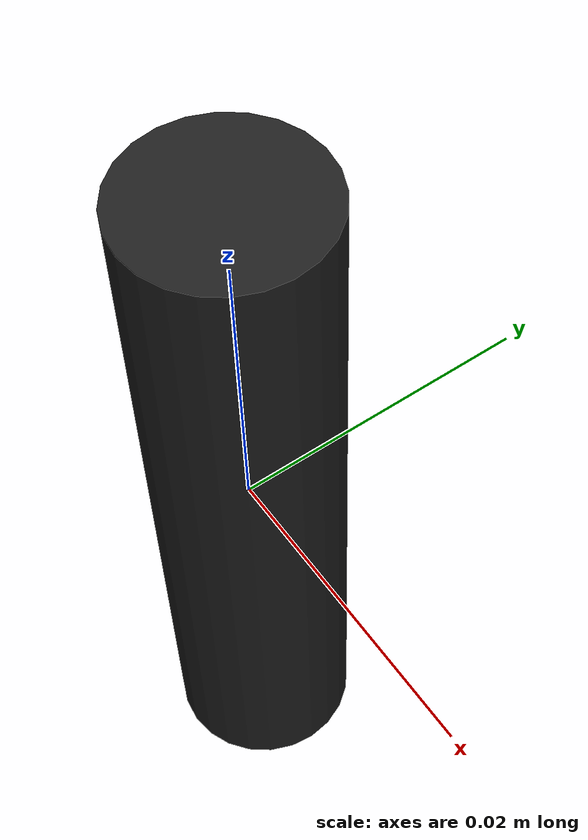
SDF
<?xml version="1.0" ?>
<sdf version="1.4">
  <model name="lidar">
    <link name="link">
      <pose>0 0 0 0 0 0</pose>
      <inertial>
        <pose>0 0 0 0 0 0</pose>
        <mass>0.01</mass>
        <inertia>
          <ixx>2.1733e-6</ixx>
          <ixy>0</ixy>
          <ixz>0</ixz>
          <iyy>2.1733e-6</iyy>
          <iyz>0</iyz>
          <izz>1.8e-7</izz>
        </inertia>
      </inertial>
      <visual name="visual">
        <geometry>
          <cylinder><radius>0.006</radius><length>0.05</length></cylinder>
        </geometry>
        <material>
          <script>
            <name>Gazebo/Black</name>
          </script>
        </material>
      </visual>
      <sensor name="laser" type="ray">
        <pose>0 0 0 0 0 0</pose>
        <ray>
          <scan>
            <horizontal>
              <samples>1</samples>
              <resolution>1</resolution>
              <min_angle>-0</min_angle>
              <max_angle>0</max_angle>
            </horizontal>
          </scan>
          <range>
            <min>0.06</min> <!-- do not change: use min_distance (below) for realistic behavior (smaller values cause issues) -->
            <max>35</max>   <!-- do not change: use min_distance (below) for realistic behavior (bigger values cause issues) -->
            <resolution>0.01</resolution>
          </range>
          <noise>
            <type>gaussian</type>
            <mean>0.0</mean>
            <stddev>0.002</stddev>
          </noise>
        </ray>

        <!-- ROS 2 Gazebo Classic 플러그인 추가 -->
        <plugin name="lidar_plugin_camera" filename="libgazebo_ros_ray_sensor.so">
          <ros>
            <namespace>iris</namespace>
            <remapping>scan:=left_lidar/scan</remapping>
          </ros>
          <topicName>/left_lidar/scan</topicName>
          <frameName>left_lidar</frameName>
        </plugin>

        <always_on>1</always_on>
        <update_rate>50</update_rate>
        <visualize>true</visualize>
      </sensor>
    </link>
  </model>
</sdf>
